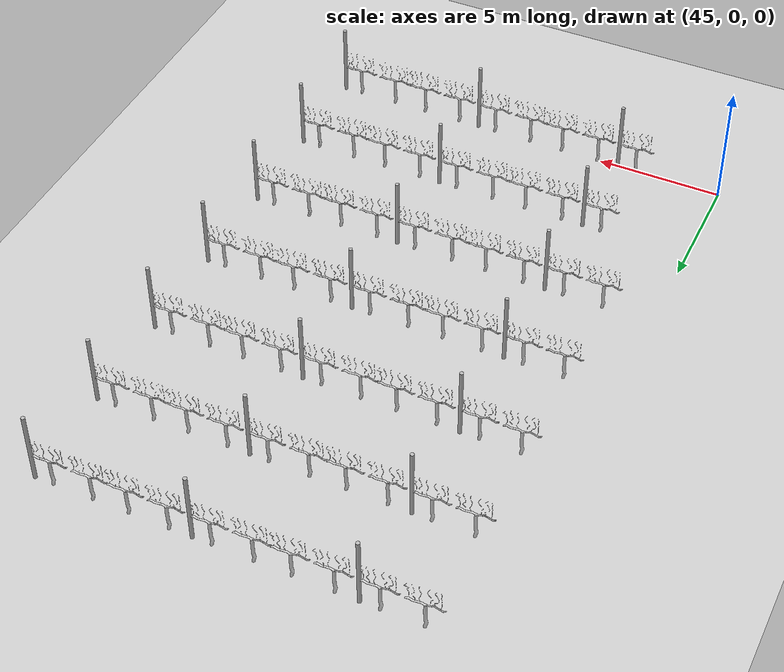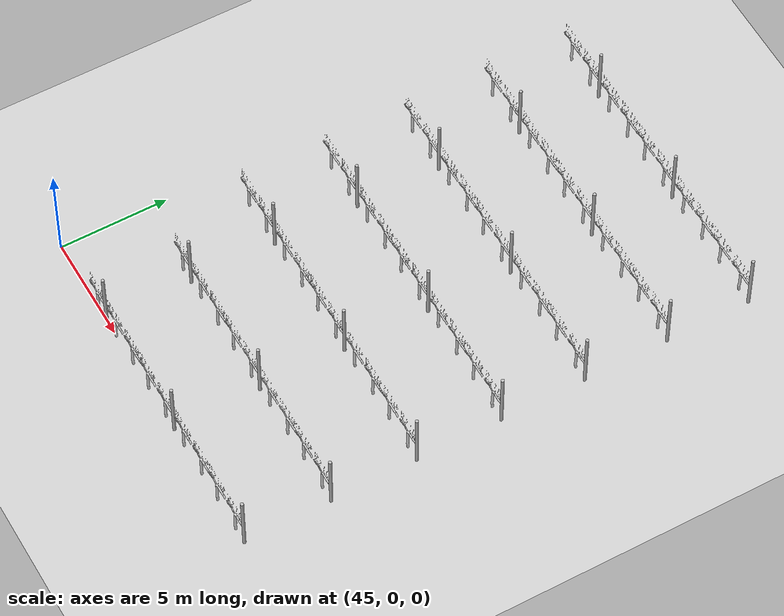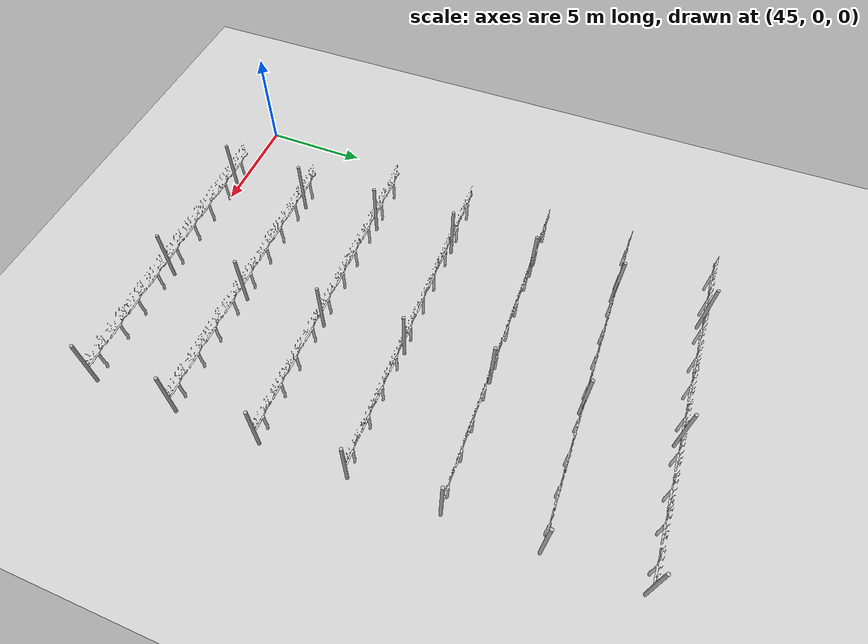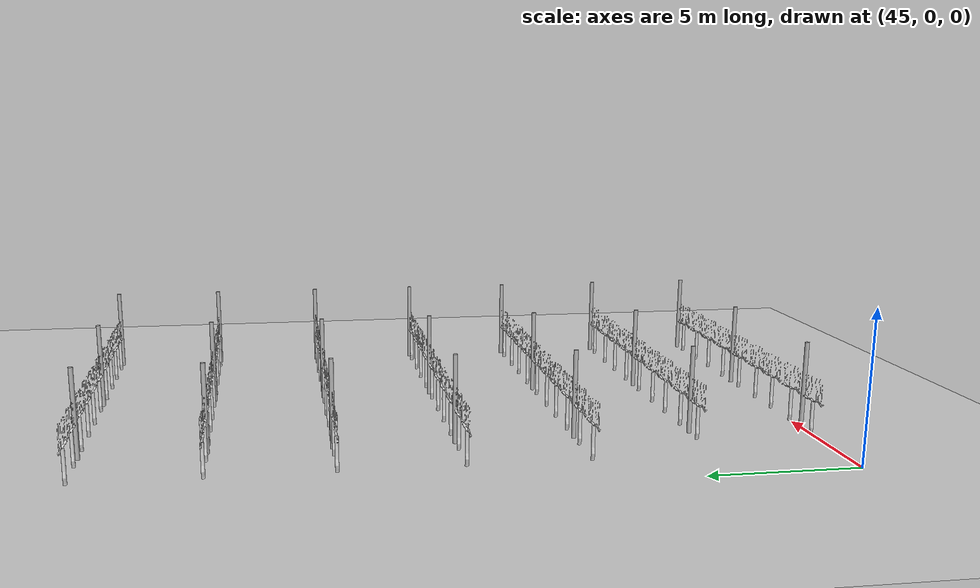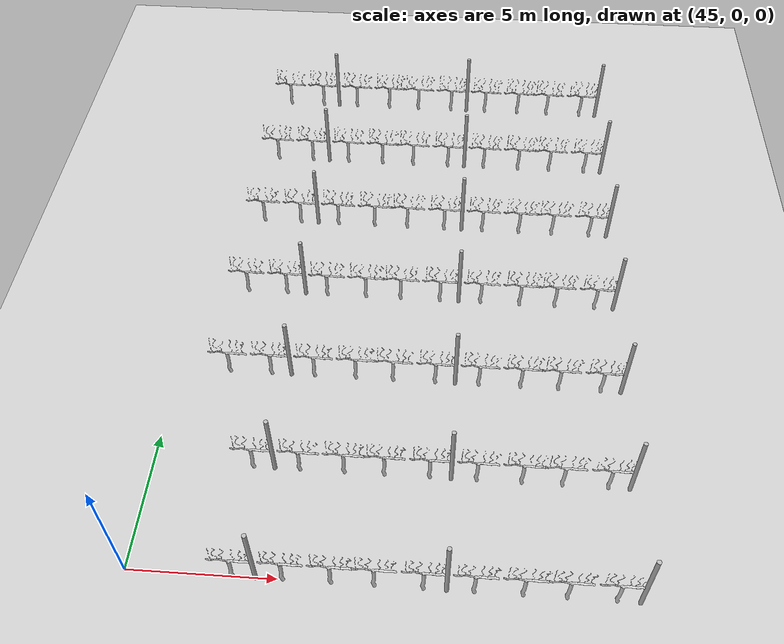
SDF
<sdf version="1.7">
 <world name="default">
  <model name="ground_plane">
   <static>true</static>
   <link name="link">
    <collision name="collision">
     <geometry><plane><normal>0 0 1</normal><size>100 100</size></plane></geometry>
    </collision>
    <visual name="visual"><geometry><plane><normal>0 0 1</normal><size>100 100</size></plane></geometry></visual>
   </link>
  </model>
  <model name="vinya_4_palo_8_fila_1">
   <static>true</static>
   <pose>48.555 0.0 0 0 0 0</pose>
   <link name="link">
    <collision name="collision">
     <geometry><mesh><uri>file://models/vinya/meshes/vinya.dae</uri></mesh></geometry>
    </collision>
    <visual name="visual">
     <geometry><mesh><uri>file://models/vinya/meshes/vinya.dae</uri></mesh></geometry>
    </visual>
   </link>
  </model>
  <model name="unit_cylinder_fila_1_palo_9">
   <static>true</static>
   <pose>49.28 0.0 1.5 0 0 0</pose>
   <link name="link">
    <collision name="collision">
     <geometry><cylinder><radius>0.075</radius><length>3</length></cylinder></geometry>
    </collision>
    <visual name="visual">
     <geometry><cylinder><radius>0.075</radius><length>3</length></cylinder></geometry>
    </visual>
   </link>
  </model>
  <model name="vinya_1_palo_9_fila_1">
   <static>true</static>
   <pose>50.18 0.0 0 0 0 0</pose>
   <link name="link">
    <collision name="collision">
     <geometry><mesh><uri>file://models/vinya/meshes/vinya.dae</uri></mesh></geometry>
    </collision>
    <visual name="visual">
     <geometry><mesh><uri>file://models/vinya/meshes/vinya.dae</uri></mesh></geometry>
    </visual>
   </link>
  </model>
  <model name="vinya_2_palo_9_fila_1">
   <static>true</static>
   <pose>51.74 0.0 0 0 0 0</pose>
   <link name="link">
    <collision name="collision">
     <geometry><mesh><uri>file://models/vinya/meshes/vinya.dae</uri></mesh></geometry>
    </collision>
    <visual name="visual">
     <geometry><mesh><uri>file://models/vinya/meshes/vinya.dae</uri></mesh></geometry>
    </visual>
   </link>
  </model>
  <model name="vinya_3_palo_9_fila_1">
   <static>true</static>
   <pose>53.14 0.0 0 0 0 0</pose>
   <link name="link">
    <collision name="collision">
     <geometry><mesh><uri>file://models/vinya/meshes/vinya.dae</uri></mesh></geometry>
    </collision>
    <visual name="visual">
     <geometry><mesh><uri>file://models/vinya/meshes/vinya.dae</uri></mesh></geometry>
    </visual>
   </link>
  </model>
  <model name="vinya_4_palo_9_fila_1">
   <static>true</static>
   <pose>54.715 0.0 0 0 0 0</pose>
   <link name="link">
    <collision name="collision">
     <geometry><mesh><uri>file://models/vinya/meshes/vinya.dae</uri></mesh></geometry>
    </collision>
    <visual name="visual">
     <geometry><mesh><uri>file://models/vinya/meshes/vinya.dae</uri></mesh></geometry>
    </visual>
   </link>
  </model>
  <model name="unit_cylinder_fila_1_palo_10">
   <static>true</static>
   <pose>55.440000000000005 0.0 1.5 0 0 0</pose>
   <link name="link">
    <collision name="collision">
     <geometry><cylinder><radius>0.075</radius><length>3</length></cylinder></geometry>
    </collision>
    <visual name="visual">
     <geometry><cylinder><radius>0.075</radius><length>3</length></cylinder></geometry>
    </visual>
   </link>
  </model>
  <model name="vinya_1_palo_10_fila_1">
   <static>true</static>
   <pose>56.34 0.0 0 0 0 0</pose>
   <link name="link">
    <collision name="collision">
     <geometry><mesh><uri>file://models/vinya/meshes/vinya.dae</uri></mesh></geometry>
    </collision>
    <visual name="visual">
     <geometry><mesh><uri>file://models/vinya/meshes/vinya.dae</uri></mesh></geometry>
    </visual>
   </link>
  </model>
  <model name="vinya_2_palo_10_fila_1">
   <static>true</static>
   <pose>57.900000000000006 0.0 0 0 0 0</pose>
   <link name="link">
    <collision name="collision">
     <geometry><mesh><uri>file://models/vinya/meshes/vinya.dae</uri></mesh></geometry>
    </collision>
    <visual name="visual">
     <geometry><mesh><uri>file://models/vinya/meshes/vinya.dae</uri></mesh></geometry>
    </visual>
   </link>
  </model>
  <model name="vinya_3_palo_10_fila_1">
   <static>true</static>
   <pose>59.300000000000004 0.0 0 0 0 0</pose>
   <link name="link">
    <collision name="collision">
     <geometry><mesh><uri>file://models/vinya/meshes/vinya.dae</uri></mesh></geometry>
    </collision>
    <visual name="visual">
     <geometry><mesh><uri>file://models/vinya/meshes/vinya.dae</uri></mesh></geometry>
    </visual>
   </link>
  </model>
  <model name="vinya_4_palo_10_fila_1">
   <static>true</static>
   <pose>60.87500000000001 0.0 0 0 0 0</pose>
   <link name="link">
    <collision name="collision">
     <geometry><mesh><uri>file://models/vinya/meshes/vinya.dae</uri></mesh></geometry>
    </collision>
    <visual name="visual">
     <geometry><mesh><uri>file://models/vinya/meshes/vinya.dae</uri></mesh></geometry>
    </visual>
   </link>
  </model>
  <model name="unit_cylinder_fila_1_palo_11">
   <static>true</static>
   <pose>61.60000000000001 0.0 1.5 0 0 0</pose>
   <link name="link">
    <collision name="collision">
     <geometry><cylinder><radius>0.075</radius><length>3</length></cylinder></geometry>
    </collision>
    <visual name="visual">
     <geometry><cylinder><radius>0.075</radius><length>3</length></cylinder></geometry>
    </visual>
   </link>
  </model>
  <model name="vinya_4_palo_8_fila_2">
   <static>true</static>
   <pose>48.555 4.0 0 0 0 0</pose>
   <link name="link">
    <collision name="collision">
     <geometry><mesh><uri>file://models/vinya/meshes/vinya.dae</uri></mesh></geometry>
    </collision>
    <visual name="visual">
     <geometry><mesh><uri>file://models/vinya/meshes/vinya.dae</uri></mesh></geometry>
    </visual>
   </link>
  </model>
  <model name="unit_cylinder_fila_2_palo_9">
   <static>true</static>
   <pose>49.28 4.0 1.5 0 0 0</pose>
   <link name="link">
    <collision name="collision">
     <geometry><cylinder><radius>0.075</radius><length>3</length></cylinder></geometry>
    </collision>
    <visual name="visual">
     <geometry><cylinder><radius>0.075</radius><length>3</length></cylinder></geometry>
    </visual>
   </link>
  </model>
  <model name="vinya_1_palo_9_fila_2">
   <static>true</static>
   <pose>50.18 4.0 0 0 0 0</pose>
   <link name="link">
    <collision name="collision">
     <geometry><mesh><uri>file://models/vinya/meshes/vinya.dae</uri></mesh></geometry>
    </collision>
    <visual name="visual">
     <geometry><mesh><uri>file://models/vinya/meshes/vinya.dae</uri></mesh></geometry>
    </visual>
   </link>
  </model>
  <model name="vinya_2_palo_9_fila_2">
   <static>true</static>
   <pose>51.74 4.0 0 0 0 0</pose>
   <link name="link">
    <collision name="collision">
     <geometry><mesh><uri>file://models/vinya/meshes/vinya.dae</uri></mesh></geometry>
    </collision>
    <visual name="visual">
     <geometry><mesh><uri>file://models/vinya/meshes/vinya.dae</uri></mesh></geometry>
    </visual>
   </link>
  </model>
  <model name="vinya_3_palo_9_fila_2">
   <static>true</static>
   <pose>53.14 4.0 0 0 0 0</pose>
   <link name="link">
    <collision name="collision">
     <geometry><mesh><uri>file://models/vinya/meshes/vinya.dae</uri></mesh></geometry>
    </collision>
    <visual name="visual">
     <geometry><mesh><uri>file://models/vinya/meshes/vinya.dae</uri></mesh></geometry>
    </visual>
   </link>
  </model>
  <model name="vinya_4_palo_9_fila_2">
   <static>true</static>
   <pose>54.715 4.0 0 0 0 0</pose>
   <link name="link">
    <collision name="collision">
     <geometry><mesh><uri>file://models/vinya/meshes/vinya.dae</uri></mesh></geometry>
    </collision>
    <visual name="visual">
     <geometry><mesh><uri>file://models/vinya/meshes/vinya.dae</uri></mesh></geometry>
    </visual>
   </link>
  </model>
  <model name="unit_cylinder_fila_2_palo_10">
   <static>true</static>
   <pose>55.440000000000005 4.0 1.5 0 0 0</pose>
   <link name="link">
    <collision name="collision">
     <geometry><cylinder><radius>0.075</radius><length>3</length></cylinder></geometry>
    </collision>
    <visual name="visual">
     <geometry><cylinder><radius>0.075</radius><length>3</length></cylinder></geometry>
    </visual>
   </link>
  </model>
  <model name="vinya_1_palo_10_fila_2">
   <static>true</static>
   <pose>56.34 4.0 0 0 0 0</pose>
   <link name="link">
    <collision name="collision">
     <geometry><mesh><uri>file://models/vinya/meshes/vinya.dae</uri></mesh></geometry>
    </collision>
    <visual name="visual">
     <geometry><mesh><uri>file://models/vinya/meshes/vinya.dae</uri></mesh></geometry>
    </visual>
   </link>
  </model>
  <model name="vinya_2_palo_10_fila_2">
   <static>true</static>
   <pose>57.900000000000006 4.0 0 0 0 0</pose>
   <link name="link">
    <collision name="collision">
     <geometry><mesh><uri>file://models/vinya/meshes/vinya.dae</uri></mesh></geometry>
    </collision>
    <visual name="visual">
     <geometry><mesh><uri>file://models/vinya/meshes/vinya.dae</uri></mesh></geometry>
    </visual>
   </link>
  </model>
  <model name="vinya_3_palo_10_fila_2">
   <static>true</static>
   <pose>59.300000000000004 4.0 0 0 0 0</pose>
   <link name="link">
    <collision name="collision">
     <geometry><mesh><uri>file://models/vinya/meshes/vinya.dae</uri></mesh></geometry>
    </collision>
    <visual name="visual">
     <geometry><mesh><uri>file://models/vinya/meshes/vinya.dae</uri></mesh></geometry>
    </visual>
   </link>
  </model>
  <model name="vinya_4_palo_10_fila_2">
   <static>true</static>
   <pose>60.87500000000001 4.0 0 0 0 0</pose>
   <link name="link">
    <collision name="collision">
     <geometry><mesh><uri>file://models/vinya/meshes/vinya.dae</uri></mesh></geometry>
    </collision>
    <visual name="visual">
     <geometry><mesh><uri>file://models/vinya/meshes/vinya.dae</uri></mesh></geometry>
    </visual>
   </link>
  </model>
  <model name="unit_cylinder_fila_2_palo_11">
   <static>true</static>
   <pose>61.60000000000001 4.0 1.5 0 0 0</pose>
   <link name="link">
    <collision name="collision">
     <geometry><cylinder><radius>0.075</radius><length>3</length></cylinder></geometry>
    </collision>
    <visual name="visual">
     <geometry><cylinder><radius>0.075</radius><length>3</length></cylinder></geometry>
    </visual>
   </link>
  </model>
  <model name="vinya_3_palo_8_fila_3">
   <static>true</static>
   <pose>46.98 8.0 0 0 0 0</pose>
   <link name="link">
    <collision name="collision">
     <geometry><mesh><uri>file://models/vinya/meshes/vinya.dae</uri></mesh></geometry>
    </collision>
    <visual name="visual">
     <geometry><mesh><uri>file://models/vinya/meshes/vinya.dae</uri></mesh></geometry>
    </visual>
   </link>
  </model>
  <model name="vinya_4_palo_8_fila_3">
   <static>true</static>
   <pose>48.555 8.0 0 0 0 0</pose>
   <link name="link">
    <collision name="collision">
     <geometry><mesh><uri>file://models/vinya/meshes/vinya.dae</uri></mesh></geometry>
    </collision>
    <visual name="visual">
     <geometry><mesh><uri>file://models/vinya/meshes/vinya.dae</uri></mesh></geometry>
    </visual>
   </link>
  </model>
  <model name="unit_cylinder_fila_3_palo_9">
   <static>true</static>
   <pose>49.28 8.0 1.5 0 0 0</pose>
   <link name="link">
    <collision name="collision">
     <geometry><cylinder><radius>0.075</radius><length>3</length></cylinder></geometry>
    </collision>
    <visual name="visual">
     <geometry><cylinder><radius>0.075</radius><length>3</length></cylinder></geometry>
    </visual>
   </link>
  </model>
  <model name="vinya_1_palo_9_fila_3">
   <static>true</static>
   <pose>50.18 8.0 0 0 0 0</pose>
   <link name="link">
    <collision name="collision">
     <geometry><mesh><uri>file://models/vinya/meshes/vinya.dae</uri></mesh></geometry>
    </collision>
    <visual name="visual">
     <geometry><mesh><uri>file://models/vinya/meshes/vinya.dae</uri></mesh></geometry>
    </visual>
   </link>
  </model>
  <model name="vinya_2_palo_9_fila_3">
   <static>true</static>
   <pose>51.74 8.0 0 0 0 0</pose>
   <link name="link">
    <collision name="collision">
     <geometry><mesh><uri>file://models/vinya/meshes/vinya.dae</uri></mesh></geometry>
    </collision>
    <visual name="visual">
     <geometry><mesh><uri>file://models/vinya/meshes/vinya.dae</uri></mesh></geometry>
    </visual>
   </link>
  </model>
  <model name="vinya_3_palo_9_fila_3">
   <static>true</static>
   <pose>53.14 8.0 0 0 0 0</pose>
   <link name="link">
    <collision name="collision">
     <geometry><mesh><uri>file://models/vinya/meshes/vinya.dae</uri></mesh></geometry>
    </collision>
    <visual name="visual">
     <geometry><mesh><uri>file://models/vinya/meshes/vinya.dae</uri></mesh></geometry>
    </visual>
   </link>
  </model>
  <model name="vinya_4_palo_9_fila_3">
   <static>true</static>
   <pose>54.715 8.0 0 0 0 0</pose>
   <link name="link">
    <collision name="collision">
     <geometry><mesh><uri>file://models/vinya/meshes/vinya.dae</uri></mesh></geometry>
    </collision>
    <visual name="visual">
     <geometry><mesh><uri>file://models/vinya/meshes/vinya.dae</uri></mesh></geometry>
    </visual>
   </link>
  </model>
  <model name="unit_cylinder_fila_3_palo_10">
   <static>true</static>
   <pose>55.440000000000005 8.0 1.5 0 0 0</pose>
   <link name="link">
    <collision name="collision">
     <geometry><cylinder><radius>0.075</radius><length>3</length></cylinder></geometry>
    </collision>
    <visual name="visual">
     <geometry><cylinder><radius>0.075</radius><length>3</length></cylinder></geometry>
    </visual>
   </link>
  </model>
  <model name="vinya_1_palo_10_fila_3">
   <static>true</static>
   <pose>56.34 8.0 0 0 0 0</pose>
   <link name="link">
    <collision name="collision">
     <geometry><mesh><uri>file://models/vinya/meshes/vinya.dae</uri></mesh></geometry>
    </collision>
    <visual name="visual">
     <geometry><mesh><uri>file://models/vinya/meshes/vinya.dae</uri></mesh></geometry>
    </visual>
   </link>
  </model>
  <model name="vinya_2_palo_10_fila_3">
   <static>true</static>
   <pose>57.900000000000006 8.0 0 0 0 0</pose>
   <link name="link">
    <collision name="collision">
     <geometry><mesh><uri>file://models/vinya/meshes/vinya.dae</uri></mesh></geometry>
    </collision>
    <visual name="visual">
     <geometry><mesh><uri>file://models/vinya/meshes/vinya.dae</uri></mesh></geometry>
    </visual>
   </link>
  </model>
  <model name="vinya_3_palo_10_fila_3">
   <static>true</static>
   <pose>59.300000000000004 8.0 0 0 0 0</pose>
   <link name="link">
    <collision name="collision">
     <geometry><mesh><uri>file://models/vinya/meshes/vinya.dae</uri></mesh></geometry>
    </collision>
    <visual name="visual">
     <geometry><mesh><uri>file://models/vinya/meshes/vinya.dae</uri></mesh></geometry>
    </visual>
   </link>
  </model>
  <model name="vinya_4_palo_10_fila_3">
   <static>true</static>
   <pose>60.87500000000001 8.0 0 0 0 0</pose>
   <link name="link">
    <collision name="collision">
     <geometry><mesh><uri>file://models/vinya/meshes/vinya.dae</uri></mesh></geometry>
    </collision>
    <visual name="visual">
     <geometry><mesh><uri>file://models/vinya/meshes/vinya.dae</uri></mesh></geometry>
    </visual>
   </link>
  </model>
  <model name="unit_cylinder_fila_3_palo_11">
   <static>true</static>
   <pose>61.60000000000001 8.0 1.5 0 0 0</pose>
   <link name="link">
    <collision name="collision">
     <geometry><cylinder><radius>0.075</radius><length>3</length></cylinder></geometry>
    </collision>
    <visual name="visual">
     <geometry><cylinder><radius>0.075</radius><length>3</length></cylinder></geometry>
    </visual>
   </link>
  </model>
  <model name="vinya_3_palo_8_fila_4">
   <static>true</static>
   <pose>46.98 12.0 0 0 0 0</pose>
   <link name="link">
    <collision name="collision">
     <geometry><mesh><uri>file://models/vinya/meshes/vinya.dae</uri></mesh></geometry>
    </collision>
    <visual name="visual">
     <geometry><mesh><uri>file://models/vinya/meshes/vinya.dae</uri></mesh></geometry>
    </visual>
   </link>
  </model>
  <model name="vinya_4_palo_8_fila_4">
   <static>true</static>
   <pose>48.555 12.0 0 0 0 0</pose>
   <link name="link">
    <collision name="collision">
     <geometry><mesh><uri>file://models/vinya/meshes/vinya.dae</uri></mesh></geometry>
    </collision>
    <visual name="visual">
     <geometry><mesh><uri>file://models/vinya/meshes/vinya.dae</uri></mesh></geometry>
    </visual>
   </link>
  </model>
  <model name="unit_cylinder_fila_4_palo_9">
   <static>true</static>
   <pose>49.28 12.0 1.5 0 0 0</pose>
   <link name="link">
    <collision name="collision">
     <geometry><cylinder><radius>0.075</radius><length>3</length></cylinder></geometry>
    </collision>
    <visual name="visual">
     <geometry><cylinder><radius>0.075</radius><length>3</length></cylinder></geometry>
    </visual>
   </link>
  </model>
  <model name="vinya_1_palo_9_fila_4">
   <static>true</static>
   <pose>50.18 12.0 0 0 0 0</pose>
   <link name="link">
    <collision name="collision">
     <geometry><mesh><uri>file://models/vinya/meshes/vinya.dae</uri></mesh></geometry>
    </collision>
    <visual name="visual">
     <geometry><mesh><uri>file://models/vinya/meshes/vinya.dae</uri></mesh></geometry>
    </visual>
   </link>
  </model>
  <model name="vinya_2_palo_9_fila_4">
   <static>true</static>
   <pose>51.74 12.0 0 0 0 0</pose>
   <link name="link">
    <collision name="collision">
     <geometry><mesh><uri>file://models/vinya/meshes/vinya.dae</uri></mesh></geometry>
    </collision>
    <visual name="visual">
     <geometry><mesh><uri>file://models/vinya/meshes/vinya.dae</uri></mesh></geometry>
    </visual>
   </link>
  </model>
  <model name="vinya_3_palo_9_fila_4">
   <static>true</static>
   <pose>53.14 12.0 0 0 0 0</pose>
   <link name="link">
    <collision name="collision">
     <geometry><mesh><uri>file://models/vinya/meshes/vinya.dae</uri></mesh></geometry>
    </collision>
    <visual name="visual">
     <geometry><mesh><uri>file://models/vinya/meshes/vinya.dae</uri></mesh></geometry>
    </visual>
   </link>
  </model>
  <model name="vinya_4_palo_9_fila_4">
   <static>true</static>
   <pose>54.715 12.0 0 0 0 0</pose>
   <link name="link">
    <collision name="collision">
     <geometry><mesh><uri>file://models/vinya/meshes/vinya.dae</uri></mesh></geometry>
    </collision>
    <visual name="visual">
     <geometry><mesh><uri>file://models/vinya/meshes/vinya.dae</uri></mesh></geometry>
    </visual>
   </link>
  </model>
  <model name="unit_cylinder_fila_4_palo_10">
   <static>true</static>
   <pose>55.440000000000005 12.0 1.5 0 0 0</pose>
   <link name="link">
    <collision name="collision">
     <geometry><cylinder><radius>0.075</radius><length>3</length></cylinder></geometry>
    </collision>
    <visual name="visual">
     <geometry><cylinder><radius>0.075</radius><length>3</length></cylinder></geometry>
    </visual>
   </link>
  </model>
  <model name="vinya_1_palo_10_fila_4">
   <static>true</static>
   <pose>56.34 12.0 0 0 0 0</pose>
   <link name="link">
    <collision name="collision">
     <geometry><mesh><uri>file://models/vinya/meshes/vinya.dae</uri></mesh></geometry>
    </collision>
    <visual name="visual">
     <geometry><mesh><uri>file://models/vinya/meshes/vinya.dae</uri></mesh></geometry>
    </visual>
   </link>
  </model>
  <model name="vinya_2_palo_10_fila_4">
   <static>true</static>
   <pose>57.900000000000006 12.0 0 0 0 0</pose>
   <link name="link">
    <collision name="collision">
     <geometry><mesh><uri>file://models/vinya/meshes/vinya.dae</uri></mesh></geometry>
    </collision>
    <visual name="visual">
     <geometry><mesh><uri>file://models/vinya/meshes/vinya.dae</uri></mesh></geometry>
    </visual>
   </link>
  </model>
  <model name="vinya_3_palo_10_fila_4">
   <static>true</static>
   <pose>59.300000000000004 12.0 0 0 0 0</pose>
   <link name="link">
    <collision name="collision">
     <geometry><mesh><uri>file://models/vinya/meshes/vinya.dae</uri></mesh></geometry>
    </collision>
    <visual name="visual">
     <geometry><mesh><uri>file://models/vinya/meshes/vinya.dae</uri></mesh></geometry>
    </visual>
   </link>
  </model>
  <model name="vinya_4_palo_10_fila_4">
   <static>true</static>
   <pose>60.87500000000001 12.0 0 0 0 0</pose>
   <link name="link">
    <collision name="collision">
     <geometry><mesh><uri>file://models/vinya/meshes/vinya.dae</uri></mesh></geometry>
    </collision>
    <visual name="visual">
     <geometry><mesh><uri>file://models/vinya/meshes/vinya.dae</uri></mesh></geometry>
    </visual>
   </link>
  </model>
  <model name="unit_cylinder_fila_4_palo_11">
   <static>true</static>
   <pose>61.60000000000001 12.0 1.5 0 0 0</pose>
   <link name="link">
    <collision name="collision">
     <geometry><cylinder><radius>0.075</radius><length>3</length></cylinder></geometry>
    </collision>
    <visual name="visual">
     <geometry><cylinder><radius>0.075</radius><length>3</length></cylinder></geometry>
    </visual>
   </link>
  </model>
  <model name="vinya_3_palo_8_fila_5">
   <static>true</static>
   <pose>46.98 16.0 0 0 0 0</pose>
   <link name="link">
    <collision name="collision">
     <geometry><mesh><uri>file://models/vinya/meshes/vinya.dae</uri></mesh></geometry>
    </collision>
    <visual name="visual">
     <geometry><mesh><uri>file://models/vinya/meshes/vinya.dae</uri></mesh></geometry>
    </visual>
   </link>
  </model>
  <model name="vinya_4_palo_8_fila_5">
   <static>true</static>
   <pose>48.555 16.0 0 0 0 0</pose>
   <link name="link">
    <collision name="collision">
     <geometry><mesh><uri>file://models/vinya/meshes/vinya.dae</uri></mesh></geometry>
    </collision>
    <visual name="visual">
     <geometry><mesh><uri>file://models/vinya/meshes/vinya.dae</uri></mesh></geometry>
    </visual>
   </link>
  </model>
  <model name="unit_cylinder_fila_5_palo_9">
   <static>true</static>
   <pose>49.28 16.0 1.5 0 0 0</pose>
   <link name="link">
    <collision name="collision">
     <geometry><cylinder><radius>0.075</radius><length>3</length></cylinder></geometry>
    </collision>
    <visual name="visual">
     <geometry><cylinder><radius>0.075</radius><length>3</length></cylinder></geometry>
    </visual>
   </link>
  </model>
  <model name="vinya_1_palo_9_fila_5">
   <static>true</static>
   <pose>50.18 16.0 0 0 0 0</pose>
   <link name="link">
    <collision name="collision">
     <geometry><mesh><uri>file://models/vinya/meshes/vinya.dae</uri></mesh></geometry>
    </collision>
    <visual name="visual">
     <geometry><mesh><uri>file://models/vinya/meshes/vinya.dae</uri></mesh></geometry>
    </visual>
   </link>
  </model>
  <model name="vinya_2_palo_9_fila_5">
   <static>true</static>
   <pose>51.74 16.0 0 0 0 0</pose>
   <link name="link">
    <collision name="collision">
     <geometry><mesh><uri>file://models/vinya/meshes/vinya.dae</uri></mesh></geometry>
    </collision>
    <visual name="visual">
     <geometry><mesh><uri>file://models/vinya/meshes/vinya.dae</uri></mesh></geometry>
    </visual>
   </link>
  </model>
  <model name="vinya_3_palo_9_fila_5">
   <static>true</static>
   <pose>53.14 16.0 0 0 0 0</pose>
   <link name="link">
    <collision name="collision">
     <geometry><mesh><uri>file://models/vinya/meshes/vinya.dae</uri></mesh></geometry>
    </collision>
    <visual name="visual">
     <geometry><mesh><uri>file://models/vinya/meshes/vinya.dae</uri></mesh></geometry>
    </visual>
   </link>
  </model>
  <model name="vinya_4_palo_9_fila_5">
   <static>true</static>
   <pose>54.715 16.0 0 0 0 0</pose>
   <link name="link">
    <collision name="collision">
     <geometry><mesh><uri>file://models/vinya/meshes/vinya.dae</uri></mesh></geometry>
    </collision>
    <visual name="visual">
     <geometry><mesh><uri>file://models/vinya/meshes/vinya.dae</uri></mesh></geometry>
    </visual>
   </link>
  </model>
  <model name="unit_cylinder_fila_5_palo_10">
   <static>true</static>
   <pose>55.440000000000005 16.0 1.5 0 0 0</pose>
   <link name="link">
    <collision name="collision">
     <geometry><cylinder><radius>0.075</radius><length>3</length></cylinder></geometry>
    </collision>
    <visual name="visual">
     <geometry><cylinder><radius>0.075</radius><length>3</length></cylinder></geometry>
    </visual>
   </link>
  </model>
  <model name="vinya_1_palo_10_fila_5">
   <static>true</static>
   <pose>56.34 16.0 0 0 0 0</pose>
   <link name="link">
    <collision name="collision">
     <geometry><mesh><uri>file://models/vinya/meshes/vinya.dae</uri></mesh></geometry>
    </collision>
    <visual name="visual">
     <geometry><mesh><uri>file://models/vinya/meshes/vinya.dae</uri></mesh></geometry>
    </visual>
   </link>
  </model>
  <model name="vinya_2_palo_10_fila_5">
   <static>true</static>
   <pose>57.900000000000006 16.0 0 0 0 0</pose>
   <link name="link">
    <collision name="collision">
     <geometry><mesh><uri>file://models/vinya/meshes/vinya.dae</uri></mesh></geometry>
    </collision>
    <visual name="visual">
     <geometry><mesh><uri>file://models/vinya/meshes/vinya.dae</uri></mesh></geometry>
    </visual>
   </link>
  </model>
  <model name="vinya_3_palo_10_fila_5">
   <static>true</static>
   <pose>59.300000000000004 16.0 0 0 0 0</pose>
   <link name="link">
    <collision name="collision">
     <geometry><mesh><uri>file://models/vinya/meshes/vinya.dae</uri></mesh></geometry>
    </collision>
    <visual name="visual">
     <geometry><mesh><uri>file://models/vinya/meshes/vinya.dae</uri></mesh></geometry>
    </visual>
   </link>
  </model>
  <model name="vinya_4_palo_10_fila_5">
   <static>true</static>
   <pose>60.87500000000001 16.0 0 0 0 0</pose>
   <link name="link">
    <collision name="collision">
     <geometry><mesh><uri>file://models/vinya/meshes/vinya.dae</uri></mesh></geometry>
    </collision>
    <visual name="visual">
     <geometry><mesh><uri>file://models/vinya/meshes/vinya.dae</uri></mesh></geometry>
    </visual>
   </link>
  </model>
  <model name="unit_cylinder_fila_5_palo_11">
   <static>true</static>
   <pose>61.60000000000001 16.0 1.5 0 0 0</pose>
   <link name="link">
    <collision name="collision">
     <geometry><cylinder><radius>0.075</radius><length>3</length></cylinder></geometry>
    </collision>
    <visual name="visual">
     <geometry><cylinder><radius>0.075</radius><length>3</length></cylinder></geometry>
    </visual>
   </link>
  </model>
  <model name="vinya_3_palo_8_fila_6">
   <static>true</static>
   <pose>46.98 20.0 0 0 0 0</pose>
   <link name="link">
    <collision name="collision">
     <geometry><mesh><uri>file://models/vinya/meshes/vinya.dae</uri></mesh></geometry>
    </collision>
    <visual name="visual">
     <geometry><mesh><uri>file://models/vinya/meshes/vinya.dae</uri></mesh></geometry>
    </visual>
   </link>
  </model>
  <model name="vinya_4_palo_8_fila_6">
   <static>true</static>
   <pose>48.555 20.0 0 0 0 0</pose>
   <link name="link">
    <collision name="collision">
     <geometry><mesh><uri>file://models/vinya/meshes/vinya.dae</uri></mesh></geometry>
    </collision>
    <visual name="visual">
     <geometry><mesh><uri>file://models/vinya/meshes/vinya.dae</uri></mesh></geometry>
    </visual>
   </link>
  </model>
  <model name="unit_cylinder_fila_6_palo_9">
   <static>true</static>
   <pose>49.28 20.0 1.5 0 0 0</pose>
   <link name="link">
    <collision name="collision">
     <geometry><cylinder><radius>0.075</radius><length>3</length></cylinder></geometry>
    </collision>
    <visual name="visual">
     <geometry><cylinder><radius>0.075</radius><length>3</length></cylinder></geometry>
    </visual>
   </link>
  </model>
  <model name="vinya_1_palo_9_fila_6">
   <static>true</static>
   <pose>50.18 20.0 0 0 0 0</pose>
   <link name="link">
    <collision name="collision">
     <geometry><mesh><uri>file://models/vinya/meshes/vinya.dae</uri></mesh></geometry>
    </collision>
    <visual name="visual">
     <geometry><mesh><uri>file://models/vinya/meshes/vinya.dae</uri></mesh></geometry>
    </visual>
   </link>
  </model>
  <model name="vinya_2_palo_9_fila_6">
   <static>true</static>
   <pose>51.74 20.0 0 0 0 0</pose>
   <link name="link">
    <collision name="collision">
     <geometry><mesh><uri>file://models/vinya/meshes/vinya.dae</uri></mesh></geometry>
    </collision>
    <visual name="visual">
     <geometry><mesh><uri>file://models/vinya/meshes/vinya.dae</uri></mesh></geometry>
    </visual>
   </link>
  </model>
  <model name="vinya_3_palo_9_fila_6">
   <static>true</static>
   <pose>53.14 20.0 0 0 0 0</pose>
   <link name="link">
    <collision name="collision">
     <geometry><mesh><uri>file://models/vinya/meshes/vinya.dae</uri></mesh></geometry>
    </collision>
    <visual name="visual">
     <geometry><mesh><uri>file://models/vinya/meshes/vinya.dae</uri></mesh></geometry>
    </visual>
   </link>
  </model>
  <model name="vinya_4_palo_9_fila_6">
   <static>true</static>
   <pose>54.715 20.0 0 0 0 0</pose>
   <link name="link">
    <collision name="collision">
     <geometry><mesh><uri>file://models/vinya/meshes/vinya.dae</uri></mesh></geometry>
    </collision>
    <visual name="visual">
     <geometry><mesh><uri>file://models/vinya/meshes/vinya.dae</uri></mesh></geometry>
    </visual>
   </link>
  </model>
  <model name="unit_cylinder_fila_6_palo_10">
   <static>true</static>
   <pose>55.440000000000005 20.0 1.5 0 0 0</pose>
   <link name="link">
    <collision name="collision">
     <geometry><cylinder><radius>0.075</radius><length>3</length></cylinder></geometry>
    </collision>
    <visual name="visual">
     <geometry><cylinder><radius>0.075</radius><length>3</length></cylinder></geometry>
    </visual>
   </link>
  </model>
  <model name="vinya_1_palo_10_fila_6">
   <static>true</static>
   <pose>56.34 20.0 0 0 0 0</pose>
   <link name="link">
    <collision name="collision">
     <geometry><mesh><uri>file://models/vinya/meshes/vinya.dae</uri></mesh></geometry>
    </collision>
    <visual name="visual">
     <geometry><mesh><uri>file://models/vinya/meshes/vinya.dae</uri></mesh></geometry>
    </visual>
   </link>
  </model>
  <model name="vinya_2_palo_10_fila_6">
   <static>true</static>
   <pose>57.900000000000006 20.0 0 0 0 0</pose>
   <link name="link">
    <collision name="collision">
     <geometry><mesh><uri>file://models/vinya/meshes/vinya.dae</uri></mesh></geometry>
    </collision>
    <visual name="visual">
     <geometry><mesh><uri>file://models/vinya/meshes/vinya.dae</uri></mesh></geometry>
    </visual>
   </link>
  </model>
  <model name="vinya_3_palo_10_fila_6">
   <static>true</static>
   <pose>59.300000000000004 20.0 0 0 0 0</pose>
   <link name="link">
    <collision name="collision">
     <geometry><mesh><uri>file://models/vinya/meshes/vinya.dae</uri></mesh></geometry>
    </collision>
    <visual name="visual">
     <geometry><mesh><uri>file://models/vinya/meshes/vinya.dae</uri></mesh></geometry>
    </visual>
   </link>
  </model>
  <model name="vinya_4_palo_10_fila_6">
   <static>true</static>
   <pose>60.87500000000001 20.0 0 0 0 0</pose>
   <link name="link">
    <collision name="collision">
     <geometry><mesh><uri>file://models/vinya/meshes/vinya.dae</uri></mesh></geometry>
    </collision>
    <visual name="visual">
     <geometry><mesh><uri>file://models/vinya/meshes/vinya.dae</uri></mesh></geometry>
    </visual>
   </link>
  </model>
  <model name="unit_cylinder_fila_6_palo_11">
   <static>true</static>
   <pose>61.60000000000001 20.0 1.5 0 0 0</pose>
   <link name="link">
    <collision name="collision">
     <geometry><cylinder><radius>0.075</radius><length>3</length></cylinder></geometry>
    </collision>
    <visual name="visual">
     <geometry><cylinder><radius>0.075</radius><length>3</length></cylinder></geometry>
    </visual>
   </link>
  </model>
  <model name="vinya_3_palo_8_fila_7">
   <static>true</static>
   <pose>46.98 24.0 0 0 0 0</pose>
   <link name="link">
    <collision name="collision">
     <geometry><mesh><uri>file://models/vinya/meshes/vinya.dae</uri></mesh></geometry>
    </collision>
    <visual name="visual">
     <geometry><mesh><uri>file://models/vinya/meshes/vinya.dae</uri></mesh></geometry>
    </visual>
   </link>
  </model>
  <model name="vinya_4_palo_8_fila_7">
   <static>true</static>
   <pose>48.555 24.0 0 0 0 0</pose>
   <link name="link">
    <collision name="collision">
     <geometry><mesh><uri>file://models/vinya/meshes/vinya.dae</uri></mesh></geometry>
    </collision>
    <visual name="visual">
     <geometry><mesh><uri>file://models/vinya/meshes/vinya.dae</uri></mesh></geometry>
    </visual>
   </link>
  </model>
  <model name="unit_cylinder_fila_7_palo_9">
   <static>true</static>
   <pose>49.28 24.0 1.5 0 0 0</pose>
   <link name="link">
    <collision name="collision">
     <geometry><cylinder><radius>0.075</radius><length>3</length></cylinder></geometry>
    </collision>
    <visual name="visual">
     <geometry><cylinder><radius>0.075</radius><length>3</length></cylinder></geometry>
    </visual>
   </link>
  </model>
  <model name="vinya_1_palo_9_fila_7">
   <static>true</static>
   <pose>50.18 24.0 0 0 0 0</pose>
   <link name="link">
    <collision name="collision">
     <geometry><mesh><uri>file://models/vinya/meshes/vinya.dae</uri></mesh></geometry>
    </collision>
    <visual name="visual">
     <geometry><mesh><uri>file://models/vinya/meshes/vinya.dae</uri></mesh></geometry>
    </visual>
   </link>
  </model>
  <model name="vinya_2_palo_9_fila_7">
   <static>true</static>
   <pose>51.74 24.0 0 0 0 0</pose>
   <link name="link">
    <collision name="collision">
     <geometry><mesh><uri>file://models/vinya/meshes/vinya.dae</uri></mesh></geometry>
    </collision>
    <visual name="visual">
     <geometry><mesh><uri>file://models/vinya/meshes/vinya.dae</uri></mesh></geometry>
    </visual>
   </link>
  </model>
  <model name="vinya_3_palo_9_fila_7">
   <static>true</static>
   <pose>53.14 24.0 0 0 0 0</pose>
   <link name="link">
    <collision name="collision">
     <geometry><mesh><uri>file://models/vinya/meshes/vinya.dae</uri></mesh></geometry>
    </collision>
    <visual name="visual">
     <geometry><mesh><uri>file://models/vinya/meshes/vinya.dae</uri></mesh></geometry>
    </visual>
   </link>
  </model>
  <model name="vinya_4_palo_9_fila_7">
   <static>true</static>
   <pose>54.715 24.0 0 0 0 0</pose>
   <link name="link">
    <collision name="collision">
     <geometry><mesh><uri>file://models/vinya/meshes/vinya.dae</uri></mesh></geometry>
    </collision>
    <visual name="visual">
     <geometry><mesh><uri>file://models/vinya/meshes/vinya.dae</uri></mesh></geometry>
    </visual>
   </link>
  </model>
  <model name="unit_cylinder_fila_7_palo_10">
   <static>true</static>
   <pose>55.440000000000005 24.0 1.5 0 0 0</pose>
   <link name="link">
    <collision name="collision">
     <geometry><cylinder><radius>0.075</radius><length>3</length></cylinder></geometry>
    </collision>
    <visual name="visual">
     <geometry><cylinder><radius>0.075</radius><length>3</length></cylinder></geometry>
    </visual>
   </link>
  </model>
  <model name="vinya_1_palo_10_fila_7">
   <static>true</static>
   <pose>56.34 24.0 0 0 0 0</pose>
   <link name="link">
    <collision name="collision">
     <geometry><mesh><uri>file://models/vinya/meshes/vinya.dae</uri></mesh></geometry>
    </collision>
    <visual name="visual">
     <geometry><mesh><uri>file://models/vinya/meshes/vinya.dae</uri></mesh></geometry>
    </visual>
   </link>
  </model>
  <model name="vinya_2_palo_10_fila_7">
   <static>true</static>
   <pose>57.900000000000006 24.0 0 0 0 0</pose>
   <link name="link">
    <collision name="collision">
     <geometry><mesh><uri>file://models/vinya/meshes/vinya.dae</uri></mesh></geometry>
    </collision>
    <visual name="visual">
     <geometry><mesh><uri>file://models/vinya/meshes/vinya.dae</uri></mesh></geometry>
    </visual>
   </link>
  </model>
  <model name="vinya_3_palo_10_fila_7">
   <static>true</static>
   <pose>59.300000000000004 24.0 0 0 0 0</pose>
   <link name="link">
    <collision name="collision">
     <geometry><mesh><uri>file://models/vinya/meshes/vinya.dae</uri></mesh></geometry>
    </collision>
    <visual name="visual">
     <geometry><mesh><uri>file://models/vinya/meshes/vinya.dae</uri></mesh></geometry>
    </visual>
   </link>
  </model>
  <model name="vinya_4_palo_10_fila_7">
   <static>true</static>
   <pose>60.87500000000001 24.0 0 0 0 0</pose>
   <link name="link">
    <collision name="collision">
     <geometry><mesh><uri>file://models/vinya/meshes/vinya.dae</uri></mesh></geometry>
    </collision>
    <visual name="visual">
     <geometry><mesh><uri>file://models/vinya/meshes/vinya.dae</uri></mesh></geometry>
    </visual>
   </link>
  </model>
  <model name="unit_cylinder_fila_7_palo_11">
   <static>true</static>
   <pose>61.60000000000001 24.0 1.5 0 0 0</pose>
   <link name="link">
    <collision name="collision">
     <geometry><cylinder><radius>0.075</radius><length>3</length></cylinder></geometry>
    </collision>
    <visual name="visual">
     <geometry><cylinder><radius>0.075</radius><length>3</length></cylinder></geometry>
    </visual>
   </link>
  </model>
 </world>
</sdf>
